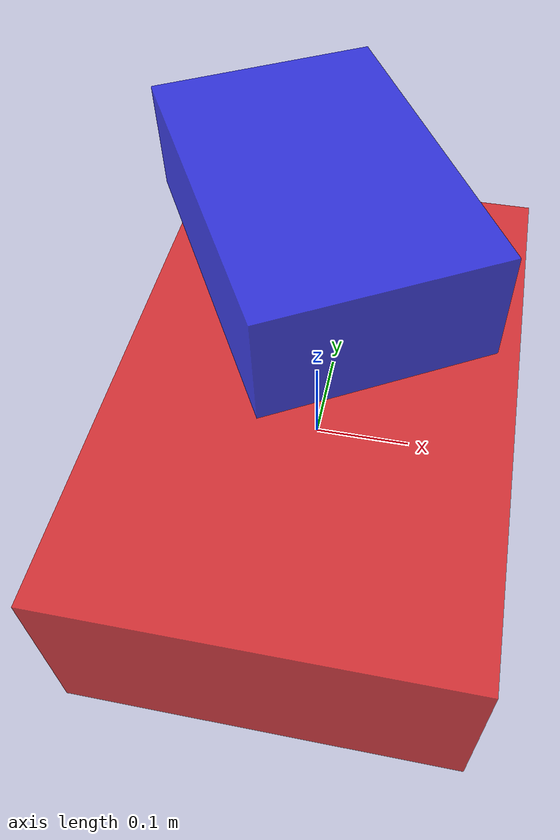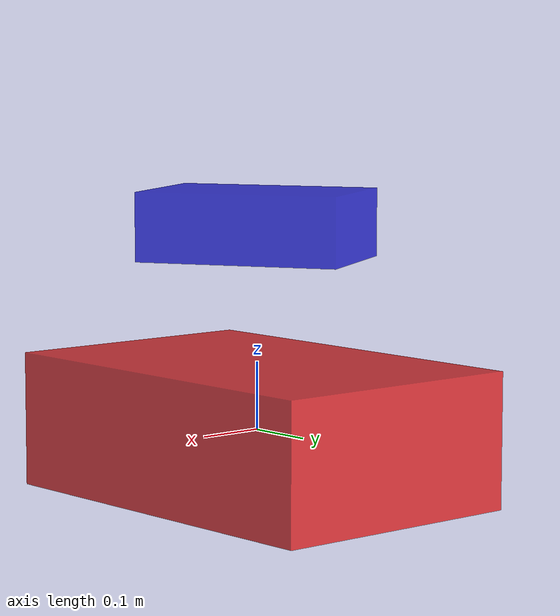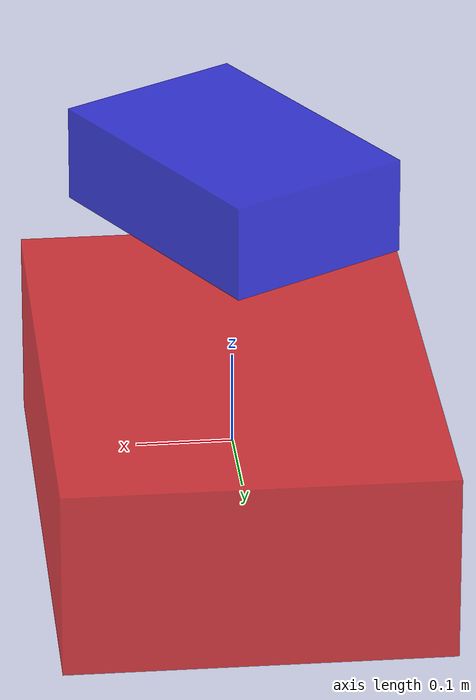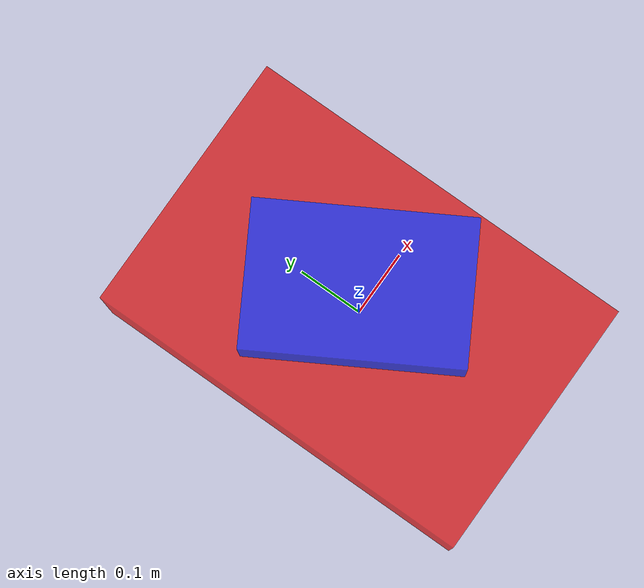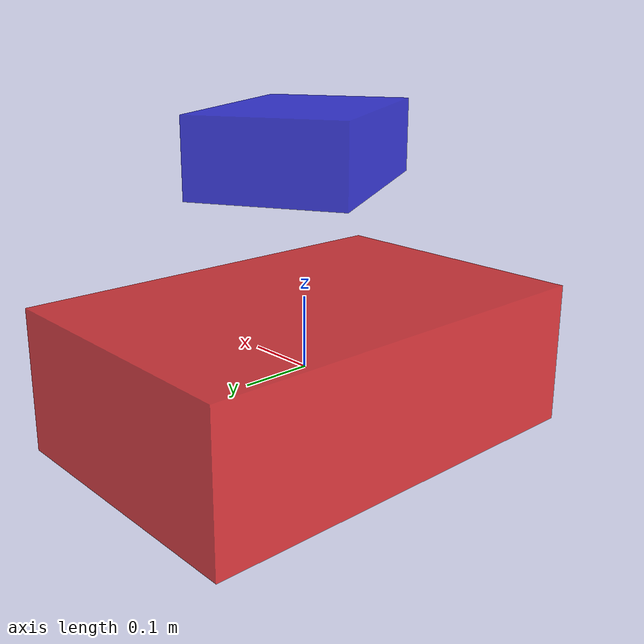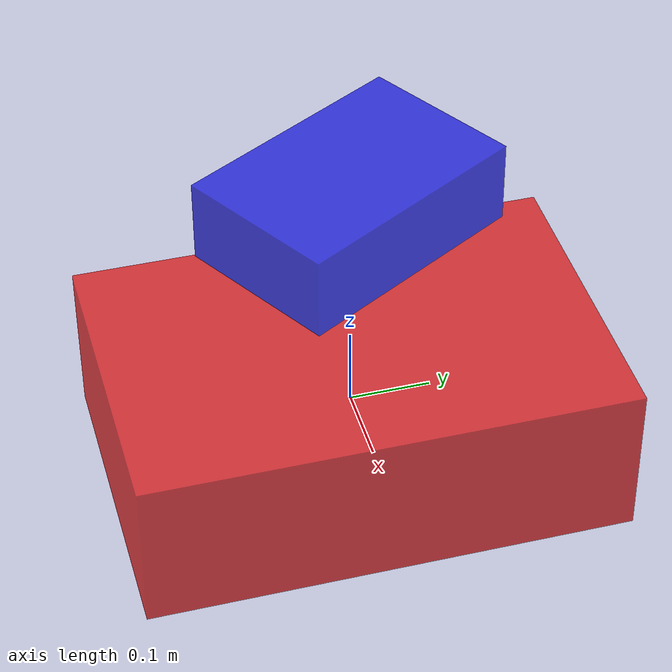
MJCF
<mujoco model="Box on another box">

    <worldbody>
        <light directional="true" diffuse=".8 .8 .8" specular=".2 .2 .2" pos=".0 .0 5.0" dir="0 0 -1"/>

        <body name="bottom_box">
            <geom name="bottom_box" type="box" size=".2 .3 .1" rgba=".9 .1 .1 .8"/>

            <body name="top_box" pos="0 0 .3" euler="90 0 0">
                <geom name="top_box" type="box" size=".1 .05 .15" rgba=".1 .1 .9 .8" mass="10" euler="0 30 0"/>
                <joint name="top_box" type="slide" axis="0 1 0"/>
            </body>
        </body>
    </worldbody>
</mujoco>
